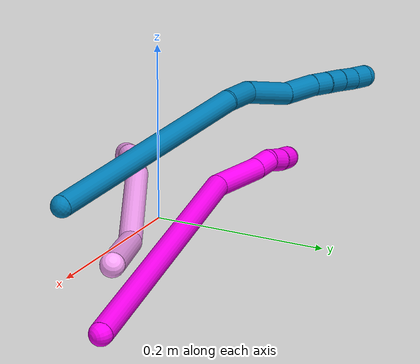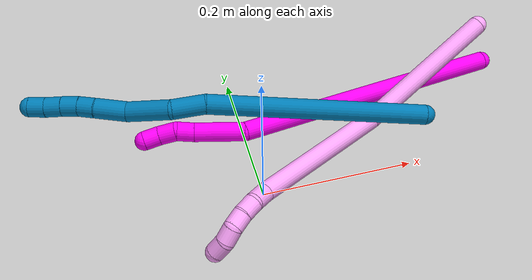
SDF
<sdf version="1.7">
 <world name="default">
  <model name="4">
   <static>0</static>
   <link name="4">
    <collision name="collision-cylinder-e_1_1_4">
     <pose>-0.040599 -0.037616 -0.085343 2.72645 -0.41057 -1.55939</pose>
     <geometry><cylinder><radius>0.0125</radius><length>0.203438</length></cylinder></geometry>
     <surface>
      <friction><ode><mu>1.16</mu><mu2>1.16</mu2><slip1>0</slip1><slip2>0</slip2></ode></friction>
      <contact><ode><kp>1e+06</kp><kd>1</kd><max_vel>0</max_vel><min_depth>0.001</min_depth></ode></contact>
     </surface>
    </collision>
    <visual name="visual-cylinder-e_1_1_4">
     <pose>-0.040599 -0.037616 -0.085343 2.72645 -0.41057 -1.55939</pose>
     <geometry><cylinder><radius>0.0125</radius><length>0.203438</length></cylinder></geometry>
     <material><ambient>1 0.65098 0.996078 1</ambient></material>
    </visual>
    <collision name="collision-cylinder-e_2_4_5">
     <pose>-0.125212 -0.132157 -0.231897 2.39246 -0.484654 -1.12261</pose>
     <geometry><cylinder><radius>0.0125</radius><length>0.188938</length></cylinder></geometry>
     <surface>
      <friction><ode><mu>1.16</mu><mu2>1.16</mu2><slip1>0</slip1><slip2>0</slip2></ode></friction>
      <contact><ode><kp>1e+06</kp><kd>1</kd><max_vel>0</max_vel><min_depth>0.001</min_depth></ode></contact>
     </surface>
    </collision>
    <visual name="visual-cylinder-e_2_4_5">
     <pose>-0.125212 -0.132157 -0.231897 2.39246 -0.484654 -1.12261</pose>
     <geometry><cylinder><radius>0.0125</radius><length>0.188938</length></cylinder></geometry>
     <material><ambient>1 0.65098 0.996078 1</ambient></material>
    </visual>
    <collision name="collision-cylinder-e_3_5_6">
     <pose>-0.173076 -0.200207 -0.298857 2.04776 -0.298313 -0.483942</pose>
     <geometry><cylinder><radius>0.0125</radius><length>0.026204</length></cylinder></geometry>
     <surface>
      <friction><ode><mu>1.16</mu><mu2>1.16</mu2><slip1>0</slip1><slip2>0</slip2></ode></friction>
      <contact><ode><kp>1e+06</kp><kd>1</kd><max_vel>0</max_vel><min_depth>0.001</min_depth></ode></contact>
     </surface>
    </collision>
    <visual name="visual-cylinder-e_3_5_6">
     <pose>-0.173076 -0.200207 -0.298857 2.04776 -0.298313 -0.483942</pose>
     <geometry><cylinder><radius>0.0125</radius><length>0.026204</length></cylinder></geometry>
     <material><ambient>1 0.65098 0.996078 1</ambient></material>
    </visual>
    <collision name="collision-cylinder-e_4_6_7">
     <pose>-0.180047 -0.217853 -0.312419 2.44613 -0.297525 -0.784147</pose>
     <geometry><cylinder><radius>0.0125</radius><length>0.021287</length></cylinder></geometry>
     <surface>
      <friction><ode><mu>1.16</mu><mu2>1.16</mu2><slip1>0</slip1><slip2>0</slip2></ode></friction>
      <contact><ode><kp>1e+06</kp><kd>1</kd><max_vel>0</max_vel><min_depth>0.001</min_depth></ode></contact>
     </surface>
    </collision>
    <visual name="visual-cylinder-e_4_6_7">
     <pose>-0.180047 -0.217853 -0.312419 2.44613 -0.297525 -0.784147</pose>
     <geometry><cylinder><radius>0.0125</radius><length>0.021287</length></cylinder></geometry>
     <material><ambient>1 0.65098 0.996078 1</ambient></material>
    </visual>
    <collision name="collision-cylinder-e_5_7_8">
     <pose>-0.18494 -0.229436 -0.32871 2.60325 -0.177667 -0.624608</pose>
     <geometry><cylinder><radius>0.0125</radius><length>0.020067</length></cylinder></geometry>
     <surface>
      <friction><ode><mu>1.16</mu><mu2>1.16</mu2><slip1>0</slip1><slip2>0</slip2></ode></friction>
      <contact><ode><kp>1e+06</kp><kd>1</kd><max_vel>0</max_vel><min_depth>0.001</min_depth></ode></contact>
     </surface>
    </collision>
    <visual name="visual-cylinder-e_5_7_8">
     <pose>-0.18494 -0.229436 -0.32871 2.60325 -0.177667 -0.624608</pose>
     <geometry><cylinder><radius>0.0125</radius><length>0.020067</length></cylinder></geometry>
     <material><ambient>1 0.65098 0.996078 1</ambient></material>
    </visual>
    <collision name="collision-cylinder-e_6_8_9">
     <pose>-0.187485 -0.234731 -0.347172 3.1184 -0.077126 -2.55754</pose>
     <geometry><cylinder><radius>0.0125</radius><length>0.02003</length></cylinder></geometry>
     <surface>
      <friction><ode><mu>1.16</mu><mu2>1.16</mu2><slip1>0</slip1><slip2>0</slip2></ode></friction>
      <contact><ode><kp>1e+06</kp><kd>1</kd><max_vel>0</max_vel><min_depth>0.001</min_depth></ode></contact>
     </surface>
    </collision>
    <visual name="visual-cylinder-e_6_8_9">
     <pose>-0.187485 -0.234731 -0.347172 3.1184 -0.077126 -2.55754</pose>
     <geometry><cylinder><radius>0.0125</radius><length>0.02003</length></cylinder></geometry>
     <material><ambient>1 0.65098 0.996078 1</ambient></material>
    </visual>
    <collision name="collision-cylinder-e_7_9_2">
     <pose>-0.190897 -0.232187 -0.366411 -2.85026 -0.266661 1.48127</pose>
     <geometry><cylinder><radius>0.0125</radius><length>0.020037</length></cylinder></geometry>
     <surface>
      <friction><ode><mu>1.16</mu><mu2>1.16</mu2><slip1>0</slip1><slip2>0</slip2></ode></friction>
      <contact><ode><kp>1e+06</kp><kd>1</kd><max_vel>0</max_vel><min_depth>0.001</min_depth></ode></contact>
     </surface>
    </collision>
    <visual name="visual-cylinder-e_7_9_2">
     <pose>-0.190897 -0.232187 -0.366411 -2.85026 -0.266661 1.48127</pose>
     <geometry><cylinder><radius>0.0125</radius><length>0.020037</length></cylinder></geometry>
     <material><ambient>1 0.65098 0.996078 1</ambient></material>
    </visual>
    <collision name="collision-sphere-2">
     <pose>-0.193537 -0.229411 -0.375668 0 -0 0</pose>
     <geometry><sphere><radius>0.0125</radius></sphere></geometry>
     <surface>
      <friction><ode><mu>1.16</mu><mu2>1.16</mu2><slip1>0</slip1><slip2>0</slip2></ode></friction>
      <contact><ode><kp>1e+06</kp><kd>1</kd><max_vel>0</max_vel><min_depth>0.001</min_depth></ode></contact>
     </surface>
    </collision>
    <visual name="visual-sphere-2">
     <pose>-0.193537 -0.229411 -0.375668 0 -0 0</pose>
     <geometry><sphere><radius>0.0125</radius></sphere></geometry>
     <material><ambient>1 0.65098 0.996078 1</ambient></material>
    </visual>
    <collision name="collision-sphere-9">
     <pose>-0.188257 -0.234963 -0.357154 0 -0 0</pose>
     <geometry><sphere><radius>0.0125</radius></sphere></geometry>
     <surface>
      <friction><ode><mu>1.16</mu><mu2>1.16</mu2><slip1>0</slip1><slip2>0</slip2></ode></friction>
      <contact><ode><kp>1e+06</kp><kd>1</kd><max_vel>0</max_vel><min_depth>0.001</min_depth></ode></contact>
     </surface>
    </collision>
    <visual name="visual-sphere-9">
     <pose>-0.188257 -0.234963 -0.357154 0 -0 0</pose>
     <geometry><sphere><radius>0.0125</radius></sphere></geometry>
     <material><ambient>1 0.65098 0.996078 1</ambient></material>
    </visual>
    <collision name="collision-sphere-4">
     <pose>-0.081199 -0.075233 -0.170686 0 -0 0</pose>
     <geometry><sphere><radius>0.0125</radius></sphere></geometry>
     <surface>
      <friction><ode><mu>1.16</mu><mu2>1.16</mu2><slip1>0</slip1><slip2>0</slip2></ode></friction>
      <contact><ode><kp>1e+06</kp><kd>1</kd><max_vel>0</max_vel><min_depth>0.001</min_depth></ode></contact>
     </surface>
    </collision>
    <visual name="visual-sphere-4">
     <pose>-0.081199 -0.075233 -0.170686 0 -0 0</pose>
     <geometry><sphere><radius>0.0125</radius></sphere></geometry>
     <material><ambient>1 0.65098 0.996078 1</ambient></material>
    </visual>
    <collision name="collision-sphere-1">
     <geometry><sphere><radius>0.0125</radius></sphere></geometry>
     <surface>
      <friction><ode><mu>1.16</mu><mu2>1.16</mu2><slip1>0</slip1><slip2>0</slip2></ode></friction>
      <contact><ode><kp>1e+06</kp><kd>1</kd><max_vel>0</max_vel><min_depth>0.001</min_depth></ode></contact>
     </surface>
    </collision>
    <visual name="visual-sphere-1">
     <geometry><sphere><radius>0.0125</radius></sphere></geometry>
     <material><ambient>1 0.65098 0.996078 1</ambient></material>
    </visual>
    <collision name="collision-sphere-8">
     <pose>-0.186713 -0.2345 -0.337189 0 -0 0</pose>
     <geometry><sphere><radius>0.0125</radius></sphere></geometry>
     <surface>
      <friction><ode><mu>1.16</mu><mu2>1.16</mu2><slip1>0</slip1><slip2>0</slip2></ode></friction>
      <contact><ode><kp>1e+06</kp><kd>1</kd><max_vel>0</max_vel><min_depth>0.001</min_depth></ode></contact>
     </surface>
    </collision>
    <visual name="visual-sphere-8">
     <pose>-0.186713 -0.2345 -0.337189 0 -0 0</pose>
     <geometry><sphere><radius>0.0125</radius></sphere></geometry>
     <material><ambient>1 0.65098 0.996078 1</ambient></material>
    </visual>
    <collision name="collision-sphere-5">
     <pose>-0.169225 -0.189082 -0.293108 0 -0 0</pose>
     <geometry><sphere><radius>0.0125</radius></sphere></geometry>
     <surface>
      <friction><ode><mu>1.16</mu><mu2>1.16</mu2><slip1>0</slip1><slip2>0</slip2></ode></friction>
      <contact><ode><kp>1e+06</kp><kd>1</kd><max_vel>0</max_vel><min_depth>0.001</min_depth></ode></contact>
     </surface>
    </collision>
    <visual name="visual-sphere-5">
     <pose>-0.169225 -0.189082 -0.293108 0 -0 0</pose>
     <geometry><sphere><radius>0.0125</radius></sphere></geometry>
     <material><ambient>1 0.65098 0.996078 1</ambient></material>
    </visual>
    <collision name="collision-sphere-6">
     <pose>-0.176926 -0.211333 -0.304606 0 -0 0</pose>
     <geometry><sphere><radius>0.0125</radius></sphere></geometry>
     <surface>
      <friction><ode><mu>1.16</mu><mu2>1.16</mu2><slip1>0</slip1><slip2>0</slip2></ode></friction>
      <contact><ode><kp>1e+06</kp><kd>1</kd><max_vel>0</max_vel><min_depth>0.001</min_depth></ode></contact>
     </surface>
    </collision>
    <visual name="visual-sphere-6">
     <pose>-0.176926 -0.211333 -0.304606 0 -0 0</pose>
     <geometry><sphere><radius>0.0125</radius></sphere></geometry>
     <material><ambient>1 0.65098 0.996078 1</ambient></material>
    </visual>
    <collision name="collision-sphere-7">
     <pose>-0.183167 -0.224373 -0.320231 0 -0 0</pose>
     <geometry><sphere><radius>0.0125</radius></sphere></geometry>
     <surface>
      <friction><ode><mu>1.16</mu><mu2>1.16</mu2><slip1>0</slip1><slip2>0</slip2></ode></friction>
      <contact><ode><kp>1e+06</kp><kd>1</kd><max_vel>0</max_vel><min_depth>0.001</min_depth></ode></contact>
     </surface>
    </collision>
    <visual name="visual-sphere-7">
     <pose>-0.183167 -0.224373 -0.320231 0 -0 0</pose>
     <geometry><sphere><radius>0.0125</radius></sphere></geometry>
     <material><ambient>1 0.65098 0.996078 1</ambient></material>
    </visual>
    <inertial>
     <pose>-0.103152 -0.112928 -0.193099 0 -0 0</pose>
     <mass>0.5</mass>
     <inertia>
      <ixx>-0.000893</ixx>
      <ixy>0</ixy>
      <ixz>0</ixz>
      <iyy>-0.001037</iyy>
      <iyz>0</iyz>
      <izz>0.00113</izz>
     </inertia>
    </inertial>
   </link>
   <pose>0.34142 0.137301 0.092248 -0.711326 0.284828 -0.603546</pose>
  </model>
  <model name="9">
   <static>0</static>
   <link name="9">
    <collision name="collision-cylinder-e_1_1_4">
     <pose>-0.096225 0.017966 -0.098169 -2.96058 -0.767169 2.6992</pose>
     <geometry><cylinder><radius>0.0125</radius><length>0.277267</length></cylinder></geometry>
     <surface>
      <friction><ode><mu>1.16</mu><mu2>1.16</mu2><slip1>0</slip1><slip2>0</slip2></ode></friction>
      <contact><ode><kp>1e+06</kp><kd>1</kd><max_vel>0</max_vel><min_depth>0.001</min_depth></ode></contact>
     </surface>
    </collision>
    <visual name="visual-cylinder-e_1_1_4">
     <pose>-0.096225 0.017966 -0.098169 -2.96058 -0.767169 2.6992</pose>
     <geometry><cylinder><radius>0.0125</radius><length>0.277267</length></cylinder></geometry>
     <material><ambient>0 0.490196 0.709804 1</ambient></material>
    </visual>
    <collision name="collision-cylinder-e_2_4_5">
     <pose>-0.204552 0.035368 -0.213094 3.10793 -0.625201 -3.03753</pose>
     <geometry><cylinder><radius>0.0125</radius><length>0.041355</length></cylinder></geometry>
     <surface>
      <friction><ode><mu>1.16</mu><mu2>1.16</mu2><slip1>0</slip1><slip2>0</slip2></ode></friction>
      <contact><ode><kp>1e+06</kp><kd>1</kd><max_vel>0</max_vel><min_depth>0.001</min_depth></ode></contact>
     </surface>
    </collision>
    <visual name="visual-cylinder-e_2_4_5">
     <pose>-0.204552 0.035368 -0.213094 3.10793 -0.625201 -3.03753</pose>
     <geometry><cylinder><radius>0.0125</radius><length>0.041355</length></cylinder></geometry>
     <material><ambient>0 0.490196 0.709804 1</ambient></material>
    </visual>
    <collision name="collision-cylinder-e_3_5_6">
     <pose>-0.225782 0.041548 -0.256146 -2.89055 -0.324372 1.82774</pose>
     <geometry><cylinder><radius>0.0125</radius><length>0.057281</length></cylinder></geometry>
     <surface>
      <friction><ode><mu>1.16</mu><mu2>1.16</mu2><slip1>0</slip1><slip2>0</slip2></ode></friction>
      <contact><ode><kp>1e+06</kp><kd>1</kd><max_vel>0</max_vel><min_depth>0.001</min_depth></ode></contact>
     </surface>
    </collision>
    <visual name="visual-cylinder-e_3_5_6">
     <pose>-0.225782 0.041548 -0.256146 -2.89055 -0.324372 1.82774</pose>
     <geometry><cylinder><radius>0.0125</radius><length>0.057281</length></cylinder></geometry>
     <material><ambient>0 0.490196 0.709804 1</ambient></material>
    </visual>
    <collision name="collision-cylinder-e_4_6_7">
     <pose>-0.245931 0.05402 -0.298392 -2.79678 -0.576568 2.07968</pose>
     <geometry><cylinder><radius>0.0125</radius><length>0.040431</length></cylinder></geometry>
     <surface>
      <friction><ode><mu>1.16</mu><mu2>1.16</mu2><slip1>0</slip1><slip2>0</slip2></ode></friction>
      <contact><ode><kp>1e+06</kp><kd>1</kd><max_vel>0</max_vel><min_depth>0.001</min_depth></ode></contact>
     </surface>
    </collision>
    <visual name="visual-cylinder-e_4_6_7">
     <pose>-0.245931 0.05402 -0.298392 -2.79678 -0.576568 2.07968</pose>
     <geometry><cylinder><radius>0.0125</radius><length>0.040431</length></cylinder></geometry>
     <material><ambient>0 0.490196 0.709804 1</ambient></material>
    </visual>
    <collision name="collision-cylinder-e_5_7_8">
     <pose>-0.261624 0.063028 -0.32286 -2.77407 -0.473173 1.82814</pose>
     <geometry><cylinder><radius>0.0125</radius><length>0.020507</length></cylinder></geometry>
     <surface>
      <friction><ode><mu>1.16</mu><mu2>1.16</mu2><slip1>0</slip1><slip2>0</slip2></ode></friction>
      <contact><ode><kp>1e+06</kp><kd>1</kd><max_vel>0</max_vel><min_depth>0.001</min_depth></ode></contact>
     </surface>
    </collision>
    <visual name="visual-cylinder-e_5_7_8">
     <pose>-0.261624 0.063028 -0.32286 -2.77407 -0.473173 1.82814</pose>
     <geometry><cylinder><radius>0.0125</radius><length>0.020507</length></cylinder></geometry>
     <material><ambient>0 0.490196 0.709804 1</ambient></material>
    </visual>
    <collision name="collision-cylinder-e_6_8_9">
     <pose>-0.271295 0.068546 -0.340448 -2.8996 -0.49127 2.23842</pose>
     <geometry><cylinder><radius>0.0125</radius><length>0.021193</length></cylinder></geometry>
     <surface>
      <friction><ode><mu>1.16</mu><mu2>1.16</mu2><slip1>0</slip1><slip2>0</slip2></ode></friction>
      <contact><ode><kp>1e+06</kp><kd>1</kd><max_vel>0</max_vel><min_depth>0.001</min_depth></ode></contact>
     </surface>
    </collision>
    <visual name="visual-cylinder-e_6_8_9">
     <pose>-0.271295 0.068546 -0.340448 -2.8996 -0.49127 2.23842</pose>
     <geometry><cylinder><radius>0.0125</radius><length>0.021193</length></cylinder></geometry>
     <material><ambient>0 0.490196 0.709804 1</ambient></material>
    </visual>
    <collision name="collision-cylinder-e_7_9_10">
     <pose>-0.280983 0.072575 -0.358775 -2.9506 -0.461562 2.3674</pose>
     <geometry><cylinder><radius>0.0125</radius><length>0.021059</length></cylinder></geometry>
     <surface>
      <friction><ode><mu>1.16</mu><mu2>1.16</mu2><slip1>0</slip1><slip2>0</slip2></ode></friction>
      <contact><ode><kp>1e+06</kp><kd>1</kd><max_vel>0</max_vel><min_depth>0.001</min_depth></ode></contact>
     </surface>
    </collision>
    <visual name="visual-cylinder-e_7_9_10">
     <pose>-0.280983 0.072575 -0.358775 -2.9506 -0.461562 2.3674</pose>
     <geometry><cylinder><radius>0.0125</radius><length>0.021059</length></cylinder></geometry>
     <material><ambient>0 0.490196 0.709804 1</ambient></material>
    </visual>
    <collision name="collision-cylinder-e_8_10_2">
     <pose>-0.290781 0.076629 -0.376867 -2.89075 -0.510542 2.24146</pose>
     <geometry><cylinder><radius>0.0125</radius><length>0.020908</length></cylinder></geometry>
     <surface>
      <friction><ode><mu>1.16</mu><mu2>1.16</mu2><slip1>0</slip1><slip2>0</slip2></ode></friction>
      <contact><ode><kp>1e+06</kp><kd>1</kd><max_vel>0</max_vel><min_depth>0.001</min_depth></ode></contact>
     </surface>
    </collision>
    <visual name="visual-cylinder-e_8_10_2">
     <pose>-0.290781 0.076629 -0.376867 -2.89075 -0.510542 2.24146</pose>
     <geometry><cylinder><radius>0.0125</radius><length>0.020908</length></cylinder></geometry>
     <material><ambient>0 0.490196 0.709804 1</ambient></material>
    </visual>
    <collision name="collision-sphere-2">
     <pose>-0.295889 0.078893 -0.385702 0 -0 0</pose>
     <geometry><sphere><radius>0.0125</radius></sphere></geometry>
     <surface>
      <friction><ode><mu>1.16</mu><mu2>1.16</mu2><slip1>0</slip1><slip2>0</slip2></ode></friction>
      <contact><ode><kp>1e+06</kp><kd>1</kd><max_vel>0</max_vel><min_depth>0.001</min_depth></ode></contact>
     </surface>
    </collision>
    <visual name="visual-sphere-2">
     <pose>-0.295889 0.078893 -0.385702 0 -0 0</pose>
     <geometry><sphere><radius>0.0125</radius></sphere></geometry>
     <material><ambient>0 0.490196 0.709804 1</ambient></material>
    </visual>
    <collision name="collision-sphere-10">
     <pose>-0.285673 0.074365 -0.368031 0 -0 0</pose>
     <geometry><sphere><radius>0.0125</radius></sphere></geometry>
     <surface>
      <friction><ode><mu>1.16</mu><mu2>1.16</mu2><slip1>0</slip1><slip2>0</slip2></ode></friction>
      <contact><ode><kp>1e+06</kp><kd>1</kd><max_vel>0</max_vel><min_depth>0.001</min_depth></ode></contact>
     </surface>
    </collision>
    <visual name="visual-sphere-10">
     <pose>-0.285673 0.074365 -0.368031 0 -0 0</pose>
     <geometry><sphere><radius>0.0125</radius></sphere></geometry>
     <material><ambient>0 0.490196 0.709804 1</ambient></material>
    </visual>
    <collision name="collision-sphere-9">
     <pose>-0.276294 0.070785 -0.349519 0 -0 0</pose>
     <geometry><sphere><radius>0.0125</radius></sphere></geometry>
     <surface>
      <friction><ode><mu>1.16</mu><mu2>1.16</mu2><slip1>0</slip1><slip2>0</slip2></ode></friction>
      <contact><ode><kp>1e+06</kp><kd>1</kd><max_vel>0</max_vel><min_depth>0.001</min_depth></ode></contact>
     </surface>
    </collision>
    <visual name="visual-sphere-9">
     <pose>-0.276294 0.070785 -0.349519 0 -0 0</pose>
     <geometry><sphere><radius>0.0125</radius></sphere></geometry>
     <material><ambient>0 0.490196 0.709804 1</ambient></material>
    </visual>
    <collision name="collision-sphere-4">
     <pose>-0.192451 0.035933 -0.196337 0 -0 0</pose>
     <geometry><sphere><radius>0.0125</radius></sphere></geometry>
     <surface>
      <friction><ode><mu>1.16</mu><mu2>1.16</mu2><slip1>0</slip1><slip2>0</slip2></ode></friction>
      <contact><ode><kp>1e+06</kp><kd>1</kd><max_vel>0</max_vel><min_depth>0.001</min_depth></ode></contact>
     </surface>
    </collision>
    <visual name="visual-sphere-4">
     <pose>-0.192451 0.035933 -0.196337 0 -0 0</pose>
     <geometry><sphere><radius>0.0125</radius></sphere></geometry>
     <material><ambient>0 0.490196 0.709804 1</ambient></material>
    </visual>
    <collision name="collision-sphere-1">
     <geometry><sphere><radius>0.0125</radius></sphere></geometry>
     <surface>
      <friction><ode><mu>1.16</mu><mu2>1.16</mu2><slip1>0</slip1><slip2>0</slip2></ode></friction>
      <contact><ode><kp>1e+06</kp><kd>1</kd><max_vel>0</max_vel><min_depth>0.001</min_depth></ode></contact>
     </surface>
    </collision>
    <visual name="visual-sphere-1">
     <geometry><sphere><radius>0.0125</radius></sphere></geometry>
     <material><ambient>0 0.490196 0.709804 1</ambient></material>
    </visual>
    <collision name="collision-sphere-8">
     <pose>-0.266296 0.066307 -0.331377 0 -0 0</pose>
     <geometry><sphere><radius>0.0125</radius></sphere></geometry>
     <surface>
      <friction><ode><mu>1.16</mu><mu2>1.16</mu2><slip1>0</slip1><slip2>0</slip2></ode></friction>
      <contact><ode><kp>1e+06</kp><kd>1</kd><max_vel>0</max_vel><min_depth>0.001</min_depth></ode></contact>
     </surface>
    </collision>
    <visual name="visual-sphere-8">
     <pose>-0.266296 0.066307 -0.331377 0 -0 0</pose>
     <geometry><sphere><radius>0.0125</radius></sphere></geometry>
     <material><ambient>0 0.490196 0.709804 1</ambient></material>
    </visual>
    <collision name="collision-sphere-5">
     <pose>-0.216654 0.034804 -0.22985 0 -0 0</pose>
     <geometry><sphere><radius>0.0125</radius></sphere></geometry>
     <surface>
      <friction><ode><mu>1.16</mu><mu2>1.16</mu2><slip1>0</slip1><slip2>0</slip2></ode></friction>
      <contact><ode><kp>1e+06</kp><kd>1</kd><max_vel>0</max_vel><min_depth>0.001</min_depth></ode></contact>
     </surface>
    </collision>
    <visual name="visual-sphere-5">
     <pose>-0.216654 0.034804 -0.22985 0 -0 0</pose>
     <geometry><sphere><radius>0.0125</radius></sphere></geometry>
     <material><ambient>0 0.490196 0.709804 1</ambient></material>
    </visual>
    <collision name="collision-sphere-6">
     <pose>-0.23491 0.048292 -0.282443 0 -0 0</pose>
     <geometry><sphere><radius>0.0125</radius></sphere></geometry>
     <surface>
      <friction><ode><mu>1.16</mu><mu2>1.16</mu2><slip1>0</slip1><slip2>0</slip2></ode></friction>
      <contact><ode><kp>1e+06</kp><kd>1</kd><max_vel>0</max_vel><min_depth>0.001</min_depth></ode></contact>
     </surface>
    </collision>
    <visual name="visual-sphere-6">
     <pose>-0.23491 0.048292 -0.282443 0 -0 0</pose>
     <geometry><sphere><radius>0.0125</radius></sphere></geometry>
     <material><ambient>0 0.490196 0.709804 1</ambient></material>
    </visual>
    <collision name="collision-sphere-7">
     <pose>-0.256951 0.059749 -0.314342 0 -0 0</pose>
     <geometry><sphere><radius>0.0125</radius></sphere></geometry>
     <surface>
      <friction><ode><mu>1.16</mu><mu2>1.16</mu2><slip1>0</slip1><slip2>0</slip2></ode></friction>
      <contact><ode><kp>1e+06</kp><kd>1</kd><max_vel>0</max_vel><min_depth>0.001</min_depth></ode></contact>
     </surface>
    </collision>
    <visual name="visual-sphere-7">
     <pose>-0.256951 0.059749 -0.314342 0 -0 0</pose>
     <geometry><sphere><radius>0.0125</radius></sphere></geometry>
     <material><ambient>0 0.490196 0.709804 1</ambient></material>
    </visual>
    <inertial>
     <pose>-0.162254 0.033768 -0.184078 0 -0 0</pose>
     <mass>0.5</mass>
     <inertia>
      <ixx>-0.000626</ixx>
      <ixy>0</ixy>
      <ixz>0</ixz>
      <iyy>0.002288</iyy>
      <iyz>0</iyz>
      <izz>0.000988</izz>
     </inertia>
    </inertial>
   </link>
   <pose>0.213225 0.004707 0.0865 0.441148 0.868604 0.249201</pose>
  </model>
  <model name="10">
   <static>0</static>
   <link name="10">
    <collision name="collision-cylinder-e_1_1_4">
     <pose>-0.100579 -0.013153 -0.153473 3.0561 -0.578455 -2.85608</pose>
     <geometry><cylinder><radius>0.0125</radius><length>0.367929</length></cylinder></geometry>
     <surface>
      <friction><ode><mu>1.16</mu><mu2>1.16</mu2><slip1>0</slip1><slip2>0</slip2></ode></friction>
      <contact><ode><kp>1e+06</kp><kd>1</kd><max_vel>0</max_vel><min_depth>0.001</min_depth></ode></contact>
     </surface>
    </collision>
    <visual name="visual-cylinder-e_1_1_4">
     <pose>-0.100579 -0.013153 -0.153473 3.0561 -0.578455 -2.85608</pose>
     <geometry><cylinder><radius>0.0125</radius><length>0.367929</length></cylinder></geometry>
     <material><ambient>1 0 0.964706 1</ambient></material>
    </visual>
    <collision name="collision-cylinder-e_2_4_5">
     <pose>-0.207116 -0.029478 -0.339201 3.04354 -0.181791 -2.1539</pose>
     <geometry><cylinder><radius>0.0125</radius><length>0.065909</length></cylinder></geometry>
     <surface>
      <friction><ode><mu>1.16</mu><mu2>1.16</mu2><slip1>0</slip1><slip2>0</slip2></ode></friction>
      <contact><ode><kp>1e+06</kp><kd>1</kd><max_vel>0</max_vel><min_depth>0.001</min_depth></ode></contact>
     </surface>
    </collision>
    <visual name="visual-cylinder-e_2_4_5">
     <pose>-0.207116 -0.029478 -0.339201 3.04354 -0.181791 -2.1539</pose>
     <geometry><cylinder><radius>0.0125</radius><length>0.065909</length></cylinder></geometry>
     <material><ambient>1 0 0.964706 1</ambient></material>
    </visual>
    <collision name="collision-cylinder-e_3_5_6">
     <pose>-0.215505 -0.032244 -0.382646 -3.10523 -0.213746 2.80582</pose>
     <geometry><cylinder><radius>0.0125</radius><length>0.022915</length></cylinder></geometry>
     <surface>
      <friction><ode><mu>1.16</mu><mu2>1.16</mu2><slip1>0</slip1><slip2>0</slip2></ode></friction>
      <contact><ode><kp>1e+06</kp><kd>1</kd><max_vel>0</max_vel><min_depth>0.001</min_depth></ode></contact>
     </surface>
    </collision>
    <visual name="visual-cylinder-e_3_5_6">
     <pose>-0.215505 -0.032244 -0.382646 -3.10523 -0.213746 2.80582</pose>
     <geometry><cylinder><radius>0.0125</radius><length>0.022915</length></cylinder></geometry>
     <material><ambient>1 0 0.964706 1</ambient></material>
    </visual>
    <collision name="collision-cylinder-e_4_6_7">
     <pose>-0.220377 -0.03599 -0.403994 2.75352 -0.218917 -1.01983</pose>
     <geometry><cylinder><radius>0.0125</radius><length>0.022486</length></cylinder></geometry>
     <surface>
      <friction><ode><mu>1.16</mu><mu2>1.16</mu2><slip1>0</slip1><slip2>0</slip2></ode></friction>
      <contact><ode><kp>1e+06</kp><kd>1</kd><max_vel>0</max_vel><min_depth>0.001</min_depth></ode></contact>
     </surface>
    </collision>
    <visual name="visual-cylinder-e_4_6_7">
     <pose>-0.220377 -0.03599 -0.403994 2.75352 -0.218917 -1.01983</pose>
     <geometry><cylinder><radius>0.0125</radius><length>0.022486</length></cylinder></geometry>
     <material><ambient>1 0 0.964706 1</ambient></material>
    </visual>
    <collision name="collision-cylinder-e_5_7_2">
     <pose>-0.226991 -0.043283 -0.423123 2.80489 -0.413673 -1.78001</pose>
     <geometry><cylinder><radius>0.0125</radius><length>0.020761</length></cylinder></geometry>
     <surface>
      <friction><ode><mu>1.16</mu><mu2>1.16</mu2><slip1>0</slip1><slip2>0</slip2></ode></friction>
      <contact><ode><kp>1e+06</kp><kd>1</kd><max_vel>0</max_vel><min_depth>0.001</min_depth></ode></contact>
     </surface>
    </collision>
    <visual name="visual-cylinder-e_5_7_2">
     <pose>-0.226991 -0.043283 -0.423123 2.80489 -0.413673 -1.78001</pose>
     <geometry><cylinder><radius>0.0125</radius><length>0.020761</length></cylinder></geometry>
     <material><ambient>1 0 0.964706 1</ambient></material>
    </visual>
    <collision name="collision-sphere-2">
     <pose>-0.231164 -0.046423 -0.432095 0 -0 0</pose>
     <geometry><sphere><radius>0.0125</radius></sphere></geometry>
     <surface>
      <friction><ode><mu>1.16</mu><mu2>1.16</mu2><slip1>0</slip1><slip2>0</slip2></ode></friction>
      <contact><ode><kp>1e+06</kp><kd>1</kd><max_vel>0</max_vel><min_depth>0.001</min_depth></ode></contact>
     </surface>
    </collision>
    <visual name="visual-sphere-2">
     <pose>-0.231164 -0.046423 -0.432095 0 -0 0</pose>
     <geometry><sphere><radius>0.0125</radius></sphere></geometry>
     <material><ambient>1 0 0.964706 1</ambient></material>
    </visual>
    <collision name="collision-sphere-7">
     <pose>-0.222818 -0.040143 -0.414152 0 -0 0</pose>
     <geometry><sphere><radius>0.0125</radius></sphere></geometry>
     <surface>
      <friction><ode><mu>1.16</mu><mu2>1.16</mu2><slip1>0</slip1><slip2>0</slip2></ode></friction>
      <contact><ode><kp>1e+06</kp><kd>1</kd><max_vel>0</max_vel><min_depth>0.001</min_depth></ode></contact>
     </surface>
    </collision>
    <visual name="visual-sphere-7">
     <pose>-0.222818 -0.040143 -0.414152 0 -0 0</pose>
     <geometry><sphere><radius>0.0125</radius></sphere></geometry>
     <material><ambient>1 0 0.964706 1</ambient></material>
    </visual>
    <collision name="collision-sphere-6">
     <pose>-0.217935 -0.031837 -0.393835 0 -0 0</pose>
     <geometry><sphere><radius>0.0125</radius></sphere></geometry>
     <surface>
      <friction><ode><mu>1.16</mu><mu2>1.16</mu2><slip1>0</slip1><slip2>0</slip2></ode></friction>
      <contact><ode><kp>1e+06</kp><kd>1</kd><max_vel>0</max_vel><min_depth>0.001</min_depth></ode></contact>
     </surface>
    </collision>
    <visual name="visual-sphere-6">
     <pose>-0.217935 -0.031837 -0.393835 0 -0 0</pose>
     <geometry><sphere><radius>0.0125</radius></sphere></geometry>
     <material><ambient>1 0 0.964706 1</ambient></material>
    </visual>
    <collision name="collision-sphere-5">
     <pose>-0.213074 -0.032651 -0.371457 0 -0 0</pose>
     <geometry><sphere><radius>0.0125</radius></sphere></geometry>
     <surface>
      <friction><ode><mu>1.16</mu><mu2>1.16</mu2><slip1>0</slip1><slip2>0</slip2></ode></friction>
      <contact><ode><kp>1e+06</kp><kd>1</kd><max_vel>0</max_vel><min_depth>0.001</min_depth></ode></contact>
     </surface>
    </collision>
    <visual name="visual-sphere-5">
     <pose>-0.213074 -0.032651 -0.371457 0 -0 0</pose>
     <geometry><sphere><radius>0.0125</radius></sphere></geometry>
     <material><ambient>1 0 0.964706 1</ambient></material>
    </visual>
    <collision name="collision-sphere-1">
     <geometry><sphere><radius>0.0125</radius></sphere></geometry>
     <surface>
      <friction><ode><mu>1.16</mu><mu2>1.16</mu2><slip1>0</slip1><slip2>0</slip2></ode></friction>
      <contact><ode><kp>1e+06</kp><kd>1</kd><max_vel>0</max_vel><min_depth>0.001</min_depth></ode></contact>
     </surface>
    </collision>
    <visual name="visual-sphere-1">
     <geometry><sphere><radius>0.0125</radius></sphere></geometry>
     <material><ambient>1 0 0.964706 1</ambient></material>
    </visual>
    <collision name="collision-sphere-4">
     <pose>-0.201159 -0.026305 -0.306945 0 -0 0</pose>
     <geometry><sphere><radius>0.0125</radius></sphere></geometry>
     <surface>
      <friction><ode><mu>1.16</mu><mu2>1.16</mu2><slip1>0</slip1><slip2>0</slip2></ode></friction>
      <contact><ode><kp>1e+06</kp><kd>1</kd><max_vel>0</max_vel><min_depth>0.001</min_depth></ode></contact>
     </surface>
    </collision>
    <visual name="visual-sphere-4">
     <pose>-0.201159 -0.026305 -0.306945 0 -0 0</pose>
     <geometry><sphere><radius>0.0125</radius></sphere></geometry>
     <material><ambient>1 0 0.964706 1</ambient></material>
    </visual>
    <inertial>
     <pose>-0.130526 -0.018458 -0.210921 0 -0 0</pose>
     <mass>0.5</mass>
     <inertia>
      <ixx>-0.004386</ixx>
      <ixy>0</ixy>
      <ixz>0</ixz>
      <iyy>0.003043</iyy>
      <iyz>0</iyz>
      <izz>0.002551</izz>
     </inertia>
    </inertial>
   </link>
   <pose>0.356737 0.13245 0.025306 1.68073 0.077102 1.16546</pose>
  </model>
 </world>
</sdf>
